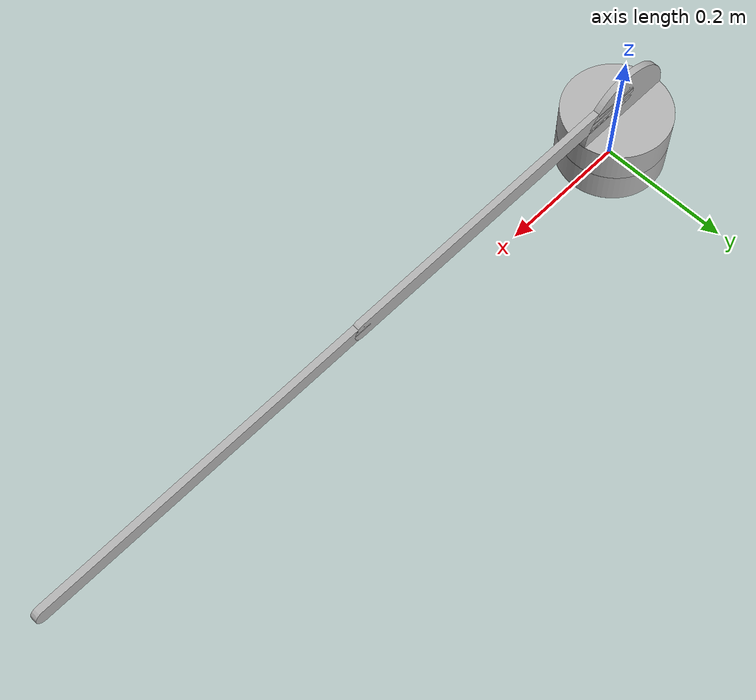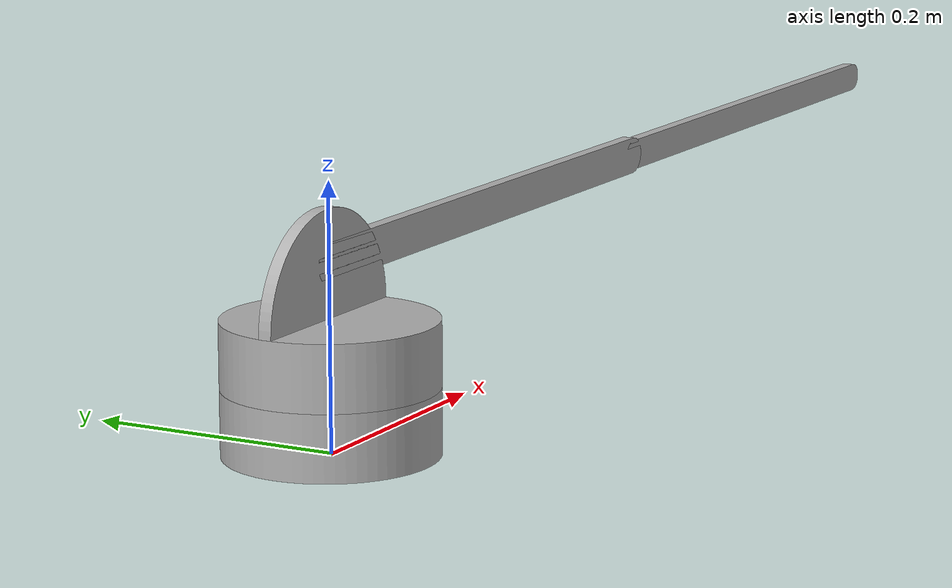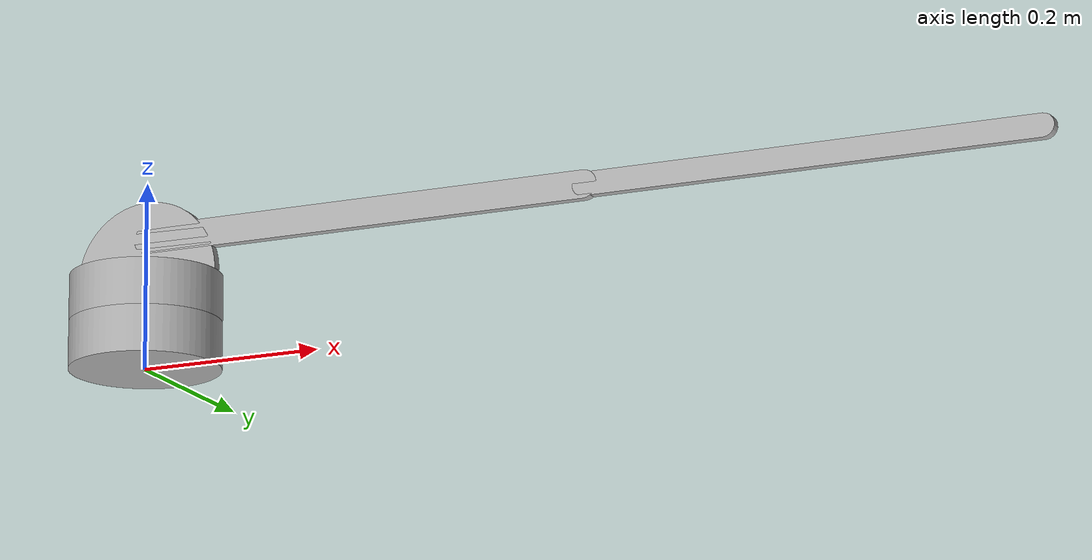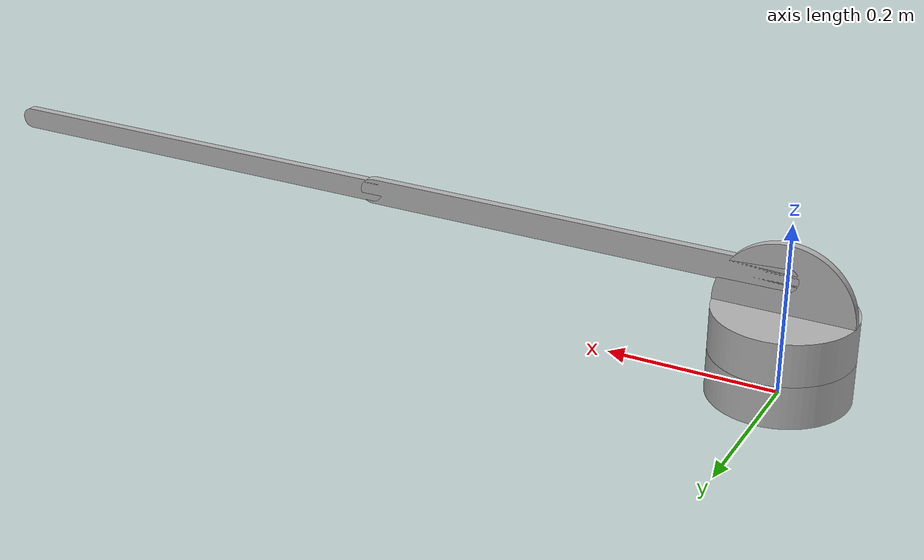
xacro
<?xml version="1.0" ?>
<robot name="cobot" xmlns:xacro="http://www.ros.org/wiki/xacro">

<xacro:include filename="$(find cobot_description)/urdf/materials.xacro" />
<xacro:include filename="$(find cobot_description)/urdf/cobot.trans" />
<xacro:include filename="$(find cobot_description)/urdf/cobot.gazebo" />
<link name="base_link">
  <inertial>
    <origin xyz="-9.04691109394067e-18 0.0 0.025" rpy="0 0 0"/>
    <mass value="7.891680745817561"/>
    <inertia ixx="0.014271" iyy="0.014271" izz="0.025253" ixy="-0.0" iyz="0.0" ixz="-0.0"/>
  </inertial>
  <visual>
    <origin xyz="0 0 0" rpy="0 0 0"/>
    <geometry>
      <mesh filename="package://cobot_description/meshes/base_link.stl" scale="0.001 0.001 0.001"/>
    </geometry>
    <material name="silver"/>
  </visual>
  <collision>
    <origin xyz="0 0 0" rpy="0 0 0"/>
    <geometry>
      <mesh filename="package://cobot_description/meshes/base_link.stl" scale="0.001 0.001 0.001"/>
    </geometry>
  </collision>
</link>

<link name="link_2_1">
  <inertial>
    <origin xyz="0.0 0.004999999999999982 0.03395305452627101" rpy="0 0 0"/>
    <mass value="0.789168074581756"/>
    <inertia ixx="0.000359" iyy="0.001616" izz="0.001269" ixy="0.0" iyz="0.0" ixz="0.0"/>
  </inertial>
  <visual>
    <origin xyz="-0.0 0.0 -0.1" rpy="0 0 0"/>
    <geometry>
      <mesh filename="package://cobot_description/meshes/link_2_1.stl" scale="0.001 0.001 0.001"/>
    </geometry>
    <material name="silver"/>
  </visual>
  <collision>
    <origin xyz="-0.0 0.0 -0.1" rpy="0 0 0"/>
    <geometry>
      <mesh filename="package://cobot_description/meshes/link_2_1.stl" scale="0.001 0.001 0.001"/>
    </geometry>
  </collision>
</link>

<link name="link_3_1">
  <inertial>
    <origin xyz="0.2500000000000006 0.004999999999999965 8.326672684688674e-17" rpy="0 0 0"/>
    <mass value="1.232988380244034"/>
    <inertia ixx="0.000102" iyy="0.02827" izz="0.028189" ixy="0.0" iyz="-0.0" ixz="0.0"/>
  </inertial>
  <visual>
    <origin xyz="-0.0 0.0 -0.14" rpy="0 0 0"/>
    <geometry>
      <mesh filename="package://cobot_description/meshes/link_3_1.stl" scale="0.001 0.001 0.001"/>
    </geometry>
    <material name="silver"/>
  </visual>
  <collision>
    <origin xyz="-0.0 0.0 -0.14" rpy="0 0 0"/>
    <geometry>
      <mesh filename="package://cobot_description/meshes/link_3_1.stl" scale="0.001 0.001 0.001"/>
    </geometry>
  </collision>
</link>

<link name="link_1_1">
  <inertial>
    <origin xyz="-3.552713678800501e-17 -5.329070518200751e-17 0.02500000000000001" rpy="0 0 0"/>
    <mass value="7.89168074581756"/>
    <inertia ixx="0.014271" iyy="0.014271" izz="0.025253" ixy="0.0" iyz="-0.0" ixz="0.0"/>
  </inertial>
  <visual>
    <origin xyz="-0.0 0.0 -0.05" rpy="0 0 0"/>
    <geometry>
      <mesh filename="package://cobot_description/meshes/link_1_1.stl" scale="0.001 0.001 0.001"/>
    </geometry>
    <material name="silver"/>
  </visual>
  <collision>
    <origin xyz="-0.0 0.0 -0.05" rpy="0 0 0"/>
    <geometry>
      <mesh filename="package://cobot_description/meshes/link_1_1.stl" scale="0.001 0.001 0.001"/>
    </geometry>
  </collision>
</link>

<link name="link_4_1">
  <inertial>
    <origin xyz="0.25 0.004999999999999983 1.3877787807814457e-16" rpy="0 0 0"/>
    <mass value="1.0197835973916873"/>
    <inertia ixx="6.1e-05" iyy="0.023007" izz="0.022963" ixy="0.0" iyz="0.0" ixz="0.0"/>
  </inertial>
  <visual>
    <origin xyz="-0.5 0.0 -0.14" rpy="0 0 0"/>
    <geometry>
      <mesh filename="package://cobot_description/meshes/link_4_1.stl" scale="0.001 0.001 0.001"/>
    </geometry>
    <material name="silver"/>
  </visual>
  <collision>
    <origin xyz="-0.5 0.0 -0.14" rpy="0 0 0"/>
    <geometry>
      <mesh filename="package://cobot_description/meshes/link_4_1.stl" scale="0.001 0.001 0.001"/>
    </geometry>
  </collision>
</link>

<joint name="Rigid2" type="fixed">
  <origin xyz="0.0 0.0 0.05" rpy="0 0 0"/>
  <parent link="link_1_1"/>
  <child link="link_2_1"/>
</joint>

<joint name="Rev5" type="revolute">
  <origin xyz="0.0 0.0 0.04" rpy="0 0 0"/>
  <parent link="link_2_1"/>
  <child link="link_3_1"/>
  <axis xyz="0.0 -1.0 0.0"/>
  <limit upper="3.141593" lower="0.0" effort="100" velocity="100"/>
</joint>

<joint name="Rev6" type="continuous">
  <origin xyz="0.0 0.0 0.05" rpy="0 0 0"/>
  <parent link="base_link"/>
  <child link="link_1_1"/>
  <axis xyz="0.0 0.0 1.0"/>
</joint>

<joint name="Rev7" type="continuous">
  <origin xyz="0.5 0.0 0.0" rpy="0 0 0"/>
  <parent link="link_3_1"/>
  <child link="link_4_1"/>
  <axis xyz="0.0 1.0 0.0"/>
</joint>

</robot>

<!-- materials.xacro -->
<robot name="cobot" xmlns:xacro="http://www.ros.org/wiki/xacro" >

<material name="silver">
  <color rgba="0.700 0.700 0.700 1.000"/>
</material>

</robot>

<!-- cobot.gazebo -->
<robot name="cobot" xmlns:xacro="http://www.ros.org/wiki/xacro" >

<xacro:property name="body_color" value="Gazebo/Silver" />

<gazebo>
  <plugin name="control" filename="libgazebo_ros_control.so"/>
</gazebo>
<gazebo reference="base_link">
  <material>${body_color}</material>
  <mu1>0.2</mu1>
  <mu2>0.2</mu2>
  <selfCollide>true</selfCollide>
  <gravity>true</gravity>
</gazebo>

<gazebo reference="link_2_1">
  <material>${body_color}</material>
  <mu1>0.2</mu1>
  <mu2>0.2</mu2>
  <selfCollide>true</selfCollide>
</gazebo>

<gazebo reference="link_3_1">
  <material>${body_color}</material>
  <mu1>0.2</mu1>
  <mu2>0.2</mu2>
  <selfCollide>true</selfCollide>
</gazebo>

<gazebo reference="link_1_1">
  <material>${body_color}</material>
  <mu1>0.2</mu1>
  <mu2>0.2</mu2>
  <selfCollide>true</selfCollide>
</gazebo>

<gazebo reference="link_4_1">
  <material>${body_color}</material>
  <mu1>0.2</mu1>
  <mu2>0.2</mu2>
  <selfCollide>true</selfCollide>
</gazebo>

</robot>
